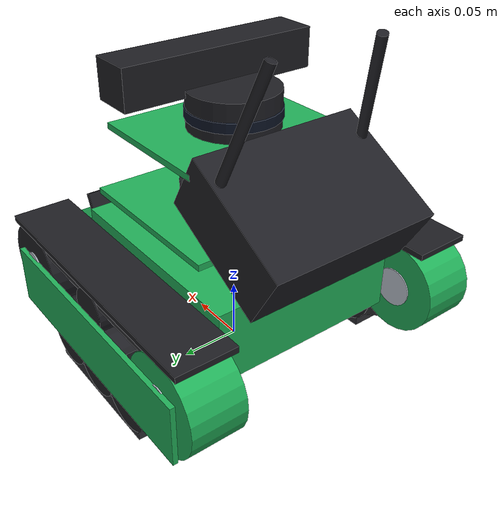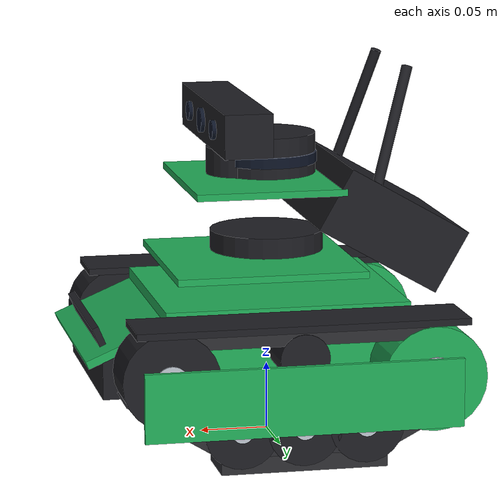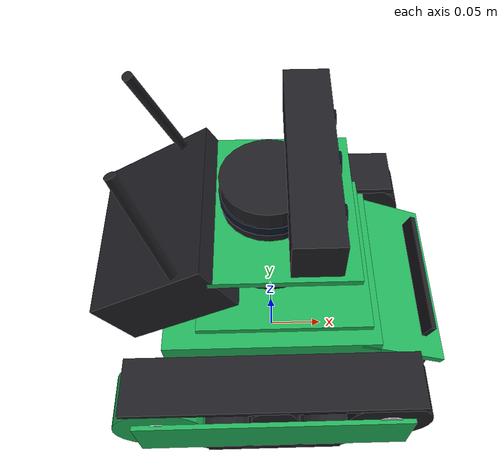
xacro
<?xml version="1.0"?>
<robot name="jettank" xmlns:xacro="http://ros.org/wiki/xacro">

  <!-- Materials matching official Hiwonder JetTank metallic green & matte black hardware -->
  <material name="hiwonder_green">
    <color rgba="0.13 0.69 0.35 1.0"/>
  </material>
  <material name="jet_black">
    <color rgba="0.12 0.12 0.14 1.0"/>
  </material>
  <material name="matte_track">
    <color rgba="0.18 0.18 0.20 1.0"/>
  </material>
  <material name="metal_silver">
    <color rgba="0.75 0.78 0.82 1.0"/>
  </material>
  <material name="lens_glass">
    <color rgba="0.05 0.08 0.15 1.0"/>
  </material>

  <!-- Base footprint on ground -->
  <link name="base_footprint"/>

  <joint name="base_footprint_joint" type="fixed">
    <origin xyz="0 0 0.05" rpy="0 0 0"/>
    <parent link="base_footprint"/>
    <child link="base_link"/>
  </joint>

  <!-- JetTank Main Chassis Body (Iconic Anodized Emerald Green Aluminum) -->
  <link name="base_link">
    <inertial>
      <mass value="2.5"/>
      <origin xyz="0 0 0.01" rpy="0 0 0"/>
      <inertia ixx="0.02" ixy="0" ixz="0" iyy="0.03" iyz="0" izz="0.03"/>
    </inertial>
    <collision>
      <origin xyz="0 0 0.04" rpy="0 0 0"/>
      <geometry>
        <box size="0.22 0.16 0.08"/>
      </geometry>
    </collision>
    <!-- 4 Non-rotating anti-pitch/anti-tip track skids in base_link (front/rear of each track) -->
    <collision name="left_track_front_skid">
      <origin xyz="0.08 0.11 -0.001" rpy="0 0 0"/>
      <geometry>
        <sphere radius="0.044"/>
      </geometry>
    </collision>
    <collision name="left_track_rear_skid">
      <origin xyz="-0.08 0.11 -0.001" rpy="0 0 0"/>
      <geometry>
        <sphere radius="0.044"/>
      </geometry>
    </collision>
    <collision name="right_track_front_skid">
      <origin xyz="0.08 -0.11 -0.001" rpy="0 0 0"/>
      <geometry>
        <sphere radius="0.044"/>
      </geometry>
    </collision>
    <collision name="right_track_rear_skid">
      <origin xyz="-0.08 -0.11 -0.001" rpy="0 0 0"/>
      <geometry>
        <sphere radius="0.044"/>
      </geometry>
    </collision>
    <!-- Visual 1: Main emerald green chassis hull -->
    <visual>
      <origin xyz="0 0 0.03" rpy="0 0 0"/>
      <geometry>
        <box size="0.18 0.16 0.06"/>
      </geometry>
      <material name="hiwonder_green"/>
    </visual>
    <!-- Visual 2: Sloped front nose plate -->
    <visual>
      <origin xyz="0.11 0 0.04" rpy="0 0.40 0"/>
      <geometry>
        <box size="0.08 0.16 0.006"/>
      </geometry>
      <material name="hiwonder_green"/>
    </visual>
    <!-- Visual 3: Front lower black bumper -->
    <visual>
      <origin xyz="0.115 0 0.015" rpy="0 0 0"/>
      <geometry>
        <box size="0.04 0.15 0.035"/>
      </geometry>
      <material name="jet_black"/>
    </visual>
    <!-- Visual 4: Front nose ventilation grill slot detail -->
    <visual>
      <origin xyz="0.135 0 0.04" rpy="0 0.40 0"/>
      <geometry>
        <box size="0.005 0.12 0.015"/>
      </geometry>
      <material name="jet_black"/>
    </visual>
    <!-- Visual 5: Middle green deck holding RPLiDAR -->
    <visual>
      <origin xyz="0.01 0 0.08" rpy="0 0 0"/>
      <geometry>
        <box size="0.14 0.15 0.005"/>
      </geometry>
      <material name="hiwonder_green"/>
    </visual>
    <!-- Visual 6: RPLiDAR lower base mount tray -->
    <visual>
      <origin xyz="0 0 0.095" rpy="0 0 0"/>
      <geometry>
        <cylinder radius="0.042" length="0.015"/>
      </geometry>
      <material name="jet_black"/>
    </visual>
    <!-- Visual 7: Upper green shelf bracket over RPLiDAR -->
    <visual>
      <origin xyz="0.01 0 0.14" rpy="0 0 0"/>
      <geometry>
        <box size="0.11 0.14 0.005"/>
      </geometry>
      <material name="hiwonder_green"/>
    </visual>
    <!-- Visual 8: Depth camera pan-tilt gimbal pedestal -->
    <visual>
      <origin xyz="0.02 0 0.155" rpy="0 0 0"/>
      <geometry>
        <cylinder radius="0.025" length="0.02"/>
      </geometry>
      <material name="jet_black"/>
    </visual>
    <!-- Visual 9: Depth camera sensor housing bar -->
    <visual>
      <origin xyz="0.03 0 0.185" rpy="0 0 0"/>
      <geometry>
        <box size="0.035 0.165 0.032"/>
      </geometry>
      <material name="jet_black"/>
    </visual>
    <!-- Visual 10: Depth camera optical lenses (Center RGB) -->
    <visual>
      <origin xyz="0.048 0 0.185" rpy="0 1.5707963 0"/>
      <geometry>
        <cylinder radius="0.009" length="0.005"/>
      </geometry>
      <material name="lens_glass"/>
    </visual>
    <!-- Visual 11: Depth camera optical lenses (Left IR) -->
    <visual>
      <origin xyz="0.048 0.045 0.185" rpy="0 1.5707963 0"/>
      <geometry>
        <cylinder radius="0.007" length="0.005"/>
      </geometry>
      <material name="lens_glass"/>
    </visual>
    <!-- Visual 12: Depth camera optical lenses (Right IR) -->
    <visual>
      <origin xyz="0.048 -0.045 0.185" rpy="0 1.5707963 0"/>
      <geometry>
        <cylinder radius="0.007" length="0.005"/>
      </geometry>
      <material name="lens_glass"/>
    </visual>
    <!-- Visual 13: Rear Jetson Nano & Display angled backplate -->
    <visual>
      <origin xyz="-0.08 0 0.11" rpy="0 -0.52 0"/>
      <geometry>
        <box size="0.10 0.14 0.05"/>
      </geometry>
      <material name="jet_black"/>
    </visual>
    <!-- Visual 14: Left Wi-Fi antenna -->
    <visual>
      <origin xyz="-0.08 0.055 0.18" rpy="0.20 -0.30 0"/>
      <geometry>
        <cylinder radius="0.004" length="0.10"/>
      </geometry>
      <material name="jet_black"/>
    </visual>
    <!-- Visual 15: Right Wi-Fi antenna -->
    <visual>
      <origin xyz="-0.08 -0.055 0.18" rpy="-0.20 -0.30 0"/>
      <geometry>
        <cylinder radius="0.004" length="0.10"/>
      </geometry>
      <material name="jet_black"/>
    </visual>
  </link>

  <!-- Left Caterpillar Track Assembly (Dải bánh xích bên trái) -->
  <link name="left_wheel">
    <inertial>
      <mass value="0.8"/>
      <origin xyz="0 0 0" rpy="0 0 0"/>
      <inertia ixx="0.001" ixy="0" ixz="0" iyy="0.003" iyz="0" izz="0.003"/>
    </inertial>
    <!-- Continuous concentric driving cylinder (ground contact with high track traction) -->
    <collision>
      <origin xyz="0 0 0" rpy="1.5707963 0 0"/>
      <geometry>
        <cylinder radius="0.045" length="0.045"/>
      </geometry>
    </collision>
    <!-- Visual 1: Outer metallic green sideplate with diagonal cutouts -->
    <visual>
      <origin xyz="0 0.024 0.005" rpy="0 0 0"/>
      <geometry>
        <box size="0.23 0.004 0.05"/>
      </geometry>
      <material name="hiwonder_green"/>
    </visual>
    <!-- Visual 2: Rear drive sprocket wheel (Green with holes) -->
    <visual>
      <origin xyz="-0.095 0 0.015" rpy="1.5707963 0 0"/>
      <geometry>
        <cylinder radius="0.038" length="0.044"/>
      </geometry>
      <material name="hiwonder_green"/>
    </visual>
    <!-- Visual 3: Rear sprocket silver hub -->
    <visual>
      <origin xyz="-0.095 0 0.015" rpy="1.5707963 0 0"/>
      <geometry>
        <cylinder radius="0.016" length="0.046"/>
      </geometry>
      <material name="metal_silver"/>
    </visual>
    <!-- Visual 4: Front raised idler wheel (Ramp climbing angle) -->
    <visual>
      <origin xyz="0.095 0 0.022" rpy="1.5707963 0 0"/>
      <geometry>
        <cylinder radius="0.035" length="0.044"/>
      </geometry>
      <material name="jet_black"/>
    </visual>
    <!-- Visual 5: Front idler silver hub -->
    <visual>
      <origin xyz="0.095 0 0.022" rpy="1.5707963 0 0"/>
      <geometry>
        <cylinder radius="0.012" length="0.046"/>
      </geometry>
      <material name="metal_silver"/>
    </visual>
    <!-- Visual 6: Bottom road wheel 1 -->
    <visual>
      <origin xyz="-0.045 0 -0.016" rpy="1.5707963 0 0"/>
      <geometry>
        <cylinder radius="0.027" length="0.044"/>
      </geometry>
      <material name="jet_black"/>
    </visual>
    <visual>
      <origin xyz="-0.045 0 -0.016" rpy="1.5707963 0 0"/>
      <geometry>
        <cylinder radius="0.008" length="0.046"/>
      </geometry>
      <material name="metal_silver"/>
    </visual>
    <!-- Visual 7: Bottom road wheel 2 (Center) -->
    <visual>
      <origin xyz="0 0 -0.016" rpy="1.5707963 0 0"/>
      <geometry>
        <cylinder radius="0.027" length="0.044"/>
      </geometry>
      <material name="jet_black"/>
    </visual>
    <visual>
      <origin xyz="0 0 -0.016" rpy="1.5707963 0 0"/>
      <geometry>
        <cylinder radius="0.008" length="0.046"/>
      </geometry>
      <material name="metal_silver"/>
    </visual>
    <!-- Visual 8: Bottom road wheel 3 -->
    <visual>
      <origin xyz="0.045 0 -0.016" rpy="1.5707963 0 0"/>
      <geometry>
        <cylinder radius="0.027" length="0.044"/>
      </geometry>
      <material name="jet_black"/>
    </visual>
    <visual>
      <origin xyz="0.045 0 -0.016" rpy="1.5707963 0 0"/>
      <geometry>
        <cylinder radius="0.008" length="0.046"/>
      </geometry>
      <material name="metal_silver"/>
    </visual>
    <!-- Visual 9: Top return roller wheel -->
    <visual>
      <origin xyz="0 0 0.034" rpy="1.5707963 0 0"/>
      <geometry>
        <cylinder radius="0.018" length="0.044"/>
      </geometry>
      <material name="jet_black"/>
    </visual>
    <!-- Visual 10: Rubber caterpillar track belt - Bottom ground contact run -->
    <visual>
      <origin xyz="0 0 -0.041" rpy="0 0 0"/>
      <geometry>
        <box size="0.12 0.042 0.012"/>
      </geometry>
      <material name="matte_track"/>
    </visual>
    <!-- Visual 11: Rubber caterpillar track belt - Front upward ramp -->
    <visual>
      <origin xyz="0.09 0 -0.010" rpy="0 -0.55 0"/>
      <geometry>
        <box size="0.08 0.042 0.012"/>
      </geometry>
      <material name="matte_track"/>
    </visual>
    <!-- Visual 12: Rubber caterpillar track belt - Rear upward ramp -->
    <visual>
      <origin xyz="-0.09 0 -0.012" rpy="0 0.48 0"/>
      <geometry>
        <box size="0.08 0.042 0.012"/>
      </geometry>
      <material name="matte_track"/>
    </visual>
    <!-- Visual 13: Rubber caterpillar track belt - Top return run -->
    <visual>
      <origin xyz="0 0 0.050" rpy="0 0 0"/>
      <geometry>
        <box size="0.18 0.042 0.012"/>
      </geometry>
      <material name="matte_track"/>
    </visual>
    <!-- Visual 14: Top fender / mudguard -->
    <visual>
      <origin xyz="0 0 0.056" rpy="0 0 0"/>
      <geometry>
        <box size="0.24 0.048 0.005"/>
      </geometry>
      <material name="jet_black"/>
    </visual>
  </link>

  <joint name="left_wheel_joint" type="continuous">
    <origin xyz="0 0.11 0" rpy="0 0 0"/>
    <parent link="base_link"/>
    <child link="left_wheel"/>
    <axis xyz="0 1 0"/>
  </joint>

  <!-- Right Caterpillar Track Assembly (Dải bánh xích bên phải) -->
  <link name="right_wheel">
    <inertial>
      <mass value="0.8"/>
      <origin xyz="0 0 0" rpy="0 0 0"/>
      <inertia ixx="0.001" ixy="0" ixz="0" iyy="0.003" iyz="0" izz="0.003"/>
    </inertial>
    <!-- Continuous concentric driving cylinder (ground contact with high track traction) -->
    <collision>
      <origin xyz="0 0 0" rpy="1.5707963 0 0"/>
      <geometry>
        <cylinder radius="0.045" length="0.045"/>
      </geometry>
    </collision>
    <!-- Visual 1: Outer metallic green sideplate with diagonal cutouts -->
    <visual>
      <origin xyz="0 -0.024 0.005" rpy="0 0 0"/>
      <geometry>
        <box size="0.23 0.004 0.05"/>
      </geometry>
      <material name="hiwonder_green"/>
    </visual>
    <!-- Visual 2: Rear drive sprocket wheel (Green with holes) -->
    <visual>
      <origin xyz="-0.095 0 0.015" rpy="1.5707963 0 0"/>
      <geometry>
        <cylinder radius="0.038" length="0.044"/>
      </geometry>
      <material name="hiwonder_green"/>
    </visual>
    <!-- Visual 3: Rear sprocket silver hub -->
    <visual>
      <origin xyz="-0.095 0 0.015" rpy="1.5707963 0 0"/>
      <geometry>
        <cylinder radius="0.016" length="0.046"/>
      </geometry>
      <material name="metal_silver"/>
    </visual>
    <!-- Visual 4: Front raised idler wheel (Ramp climbing angle) -->
    <visual>
      <origin xyz="0.095 0 0.022" rpy="1.5707963 0 0"/>
      <geometry>
        <cylinder radius="0.035" length="0.044"/>
      </geometry>
      <material name="jet_black"/>
    </visual>
    <!-- Visual 5: Front idler silver hub -->
    <visual>
      <origin xyz="0.095 0 0.022" rpy="1.5707963 0 0"/>
      <geometry>
        <cylinder radius="0.012" length="0.046"/>
      </geometry>
      <material name="metal_silver"/>
    </visual>
    <!-- Visual 6: Bottom road wheel 1 -->
    <visual>
      <origin xyz="-0.045 0 -0.016" rpy="1.5707963 0 0"/>
      <geometry>
        <cylinder radius="0.027" length="0.044"/>
      </geometry>
      <material name="jet_black"/>
    </visual>
    <visual>
      <origin xyz="-0.045 0 -0.016" rpy="1.5707963 0 0"/>
      <geometry>
        <cylinder radius="0.008" length="0.046"/>
      </geometry>
      <material name="metal_silver"/>
    </visual>
    <!-- Visual 7: Bottom road wheel 2 (Center) -->
    <visual>
      <origin xyz="0 0 -0.016" rpy="1.5707963 0 0"/>
      <geometry>
        <cylinder radius="0.027" length="0.044"/>
      </geometry>
      <material name="jet_black"/>
    </visual>
    <visual>
      <origin xyz="0 0 -0.016" rpy="1.5707963 0 0"/>
      <geometry>
        <cylinder radius="0.008" length="0.046"/>
      </geometry>
      <material name="metal_silver"/>
    </visual>
    <!-- Visual 8: Bottom road wheel 3 -->
    <visual>
      <origin xyz="0.045 0 -0.016" rpy="1.5707963 0 0"/>
      <geometry>
        <cylinder radius="0.027" length="0.044"/>
      </geometry>
      <material name="jet_black"/>
    </visual>
    <visual>
      <origin xyz="0.045 0 -0.016" rpy="1.5707963 0 0"/>
      <geometry>
        <cylinder radius="0.008" length="0.046"/>
      </geometry>
      <material name="metal_silver"/>
    </visual>
    <!-- Visual 9: Top return roller wheel -->
    <visual>
      <origin xyz="0 0 0.034" rpy="1.5707963 0 0"/>
      <geometry>
        <cylinder radius="0.018" length="0.044"/>
      </geometry>
      <material name="jet_black"/>
    </visual>
    <!-- Visual 10: Rubber caterpillar track belt - Bottom ground contact run -->
    <visual>
      <origin xyz="0 0 -0.041" rpy="0 0 0"/>
      <geometry>
        <box size="0.12 0.042 0.012"/>
      </geometry>
      <material name="matte_track"/>
    </visual>
    <!-- Visual 11: Rubber caterpillar track belt - Front upward ramp -->
    <visual>
      <origin xyz="0.09 0 -0.010" rpy="0 -0.55 0"/>
      <geometry>
        <box size="0.08 0.042 0.012"/>
      </geometry>
      <material name="matte_track"/>
    </visual>
    <!-- Visual 12: Rubber caterpillar track belt - Rear upward ramp -->
    <visual>
      <origin xyz="-0.09 0 -0.012" rpy="0 0.48 0"/>
      <geometry>
        <box size="0.08 0.042 0.012"/>
      </geometry>
      <material name="matte_track"/>
    </visual>
    <!-- Visual 13: Rubber caterpillar track belt - Top return run -->
    <visual>
      <origin xyz="0 0 0.050" rpy="0 0 0"/>
      <geometry>
        <box size="0.18 0.042 0.012"/>
      </geometry>
      <material name="matte_track"/>
    </visual>
    <!-- Visual 14: Top fender / mudguard -->
    <visual>
      <origin xyz="0 0 0.056" rpy="0 0 0"/>
      <geometry>
        <box size="0.24 0.048 0.005"/>
      </geometry>
      <material name="jet_black"/>
    </visual>
  </link>

  <joint name="right_wheel_joint" type="continuous">
    <origin xyz="0 -0.11 0" rpy="0 0 0"/>
    <parent link="base_link"/>
    <child link="right_wheel"/>
    <axis xyz="0 1 0"/>
  </joint>

  <!-- Lidar mount sensor (elevated above middle deck for unobstructed 360-degree view) -->
  <link name="laser_frame">
    <inertial>
      <mass value="0.15"/>
      <origin xyz="0 0 0" rpy="0 0 0"/>
      <inertia ixx="0.0001" ixy="0" ixz="0" iyy="0.0001" iyz="0" izz="0.0001"/>
    </inertial>
    <!-- RPLiDAR black rotating cylindrical turret -->
    <visual>
      <origin xyz="0 0 0" rpy="0 0 0"/>
      <geometry>
        <cylinder radius="0.036" length="0.030"/>
      </geometry>
      <material name="jet_black"/>
    </visual>
    <!-- RPLiDAR optical aperture slit band -->
    <visual>
      <origin xyz="0 0 -0.003" rpy="0 0 0"/>
      <geometry>
        <cylinder radius="0.037" length="0.008"/>
      </geometry>
      <material name="lens_glass"/>
    </visual>
  </link>

  <joint name="laser_joint" type="fixed">
    <origin xyz="0 0 0.16" rpy="0 0 0"/>
    <parent link="base_link"/>
    <child link="laser_frame"/>
  </joint>

  <!-- Gazebo Material Colors -->
  <gazebo reference="base_link">
    <mu1>0.05</mu1>
    <mu2>0.05</mu2>
    <material>Gazebo/Green</material>
  </gazebo>
  <gazebo reference="left_wheel">
    <mu1>1.5</mu1>
    <mu2>1.5</mu2>
    <material>Gazebo/DarkGrey</material>
  </gazebo>
  <gazebo reference="right_wheel">
    <mu1>1.5</mu1>
    <mu2>1.5</mu2>
    <material>Gazebo/DarkGrey</material>
  </gazebo>
  <gazebo reference="laser_frame">
    <material>Gazebo/FlatBlack</material>
  </gazebo>

  <!-- Ground-truth 3D Odometry Plugin: ensures odom starts at exact spawn pose in paper alley -->
  <gazebo>
    <plugin name="p3d_base_controller" filename="libgazebo_ros_p3d.so">
      <alwaysOn>true</alwaysOn>
      <updateRate>50.0</updateRate>
      <bodyName>base_footprint</bodyName>
      <topicName>odom</topicName>
      <gaussianNoise>0</gaussianNoise>
      <frameName>world</frameName>
      <xyzOffsets>0 0 0</xyzOffsets>
      <rpyOffsets>0 0 0</rpyOffsets>
    </plugin>
  </gazebo>

  <!-- Differential Drive Controller Plugin for JetTank tracks -->
  <gazebo>
    <plugin name="differential_drive_controller" filename="libgazebo_ros_diff_drive.so">
      <alwaysOn>true</alwaysOn>
      <updateRate>50</updateRate>
      <leftJoint>left_wheel_joint</leftJoint>
      <rightJoint>right_wheel_joint</rightJoint>
      <wheelSeparation>0.22</wheelSeparation>
      <wheelDiameter>0.09</wheelDiameter>
      <wheelTorque>20</wheelTorque>
      <wheelAcceleration>2.0</wheelAcceleration>
      <commandTopic>hiwonder_controller/cmd_vel</commandTopic>
      <odometryTopic>odom_encoder</odometryTopic>
      <odometryFrame>odom</odometryFrame>
      <robotBaseFrame>base_footprint</robotBaseFrame>
      <publishWheelTF>false</publishWheelTF>
      <publishOdomTF>false</publishOdomTF>
      <publishWheelJointState>true</publishWheelJointState>
      <publishTf>0</publishTf>
    </plugin>
  </gazebo>

  <!-- Lidar Ray Sensor Plugin matching Paper limited vision range R = 1.6m -->
  <gazebo reference="laser_frame">
    <sensor type="ray" name="rplidar_sensor">
      <pose>0 0 0 0 0 0</pose>
      <visualize>false</visualize>
      <update_rate>10</update_rate>
      <ray>
        <scan>
          <horizontal>
            <samples>720</samples>
            <resolution>1</resolution>
            <min_angle>-3.14159265</min_angle>
            <max_angle>3.14159265</max_angle>
          </horizontal>
        </scan>
        <range>
          <min>0.15</min>
          <max>8.00</max>
          <resolution>0.01</resolution>
        </range>
        <noise>
          <type>gaussian</type>
          <mean>0.0</mean>
          <stddev>0.01</stddev>
        </noise>
      </ray>
      <plugin name="gazebo_ros_laser" filename="libgazebo_ros_laser.so">
        <topicName>scan_raw</topicName>
        <frameName>laser_frame</frameName>
      </plugin>
    </sensor>
  </gazebo>

</robot>
